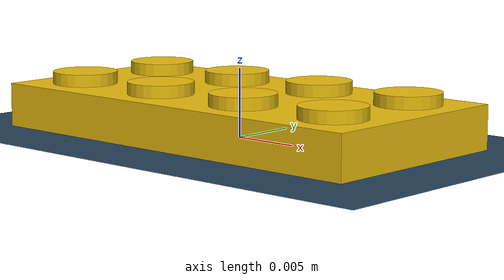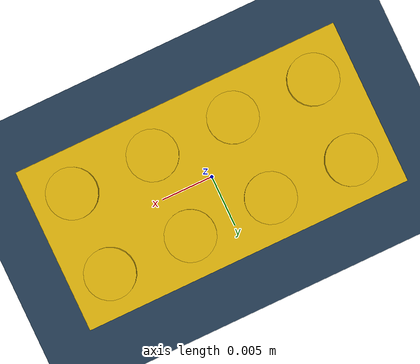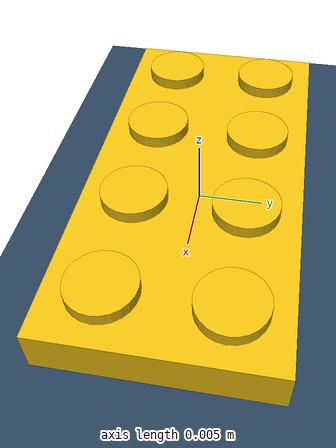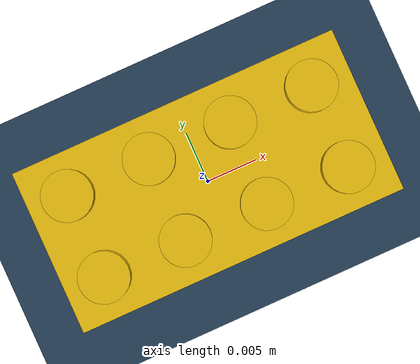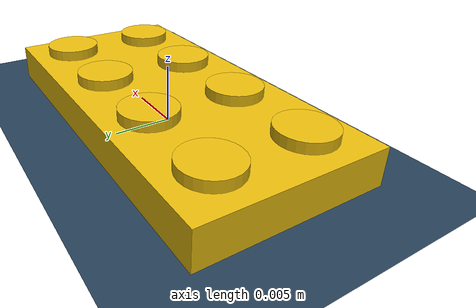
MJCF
<mujoco model="lego_plate_4x2_scene">
  <!--
    Standalone viewer scene for the lego_plate_4x2 asset.
    Quick look:
      python -m mujoco.viewer --mjcf assets/lego/scene_lego_plate_4x2.xml
  -->
  <option timestep="0.002" gravity="0 0 -9.81"/>

  <visual>
    <headlight ambient="0.4 0.4 0.4" diffuse="0.6 0.6 0.6" specular="0.1 0.1 0.1"/>
  </visual>

  <asset>
    <texture type="skybox" builtin="gradient" rgb1="0.3 0.5 0.7" rgb2="0 0 0" width="512" height="512"/>
    <texture type="2d" name="groundplane" builtin="checker" mark="edge" rgb1="0.2 0.3 0.4" rgb2="0.1 0.2 0.3"
              markrgb="0.8 0.8 0.8" width="300" height="300"/>
    <material name="groundplane" texture="groundplane" texuniform="true" texrepeat="5 5" reflectance="0.1"/>
  </asset>

  <worldbody>
    <light pos="0.2 0.2 0.3" dir="-0.5 -0.5 -1" diffuse="0.8 0.8 0.8"/>
    <geom name="floor" type="plane" size="0.5 0.5 0.05" material="groundplane"/>
  </worldbody>

  <include file="lego_plate_4x2.xml"/>

  <keyframe>
    <key name="dropped" qpos="0 0 0.05 1 0 0 0"/>
  </keyframe>
</mujoco>

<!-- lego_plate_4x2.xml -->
<mujoco model="lego_plate_4x2">
  <compiler angle="radian"/>

  <default>
    <default class="lego_plate_4x2">
      <!-- density is tuned down from ABS's real ~1050 kg/m3 so the solid
           primitive body (no hollow underside) lands near a real piece's mass -->
      <geom type="box" material="lego_yellow" density="500" friction="0.9 0.02 0.001"/>
      <default class="lego_plate_4x2/stud">
        <geom type="cylinder"/>
      </default>
    </default>
  </default>

  <asset>
    <material name="lego_yellow" rgba="0.93 0.75 0.05 1"/>
  </asset>

  <worldbody>
    <body name="lego_plate_4x2" childclass="lego_plate_4x2">
      <freejoint name="lego_plate_4x2_freejoint"/>

      <!-- plate body: 4 studs long (x) x 2 studs wide (y) x 3.2mm tall (z) -->
      <!-- mass/inertia are left to MuJoCo, computed from geom volume x density above -->
      <geom name="lego_plate_4x2_body" size="0.0159 0.0079 0.0016" pos="0 0 0.0016"/>

      <geom class="lego_plate_4x2/stud" name="lego_plate_4x2_stud_00" size="0.0024 0.00085" pos="-0.012 -0.004 0.00325"/>
      <geom class="lego_plate_4x2/stud" name="lego_plate_4x2_stud_01" size="0.0024 0.00085" pos="-0.012 0.004 0.00325"/>
      <geom class="lego_plate_4x2/stud" name="lego_plate_4x2_stud_10" size="0.0024 0.00085" pos="-0.004 -0.004 0.00325"/>
      <geom class="lego_plate_4x2/stud" name="lego_plate_4x2_stud_11" size="0.0024 0.00085" pos="-0.004 0.004 0.00325"/>
      <geom class="lego_plate_4x2/stud" name="lego_plate_4x2_stud_20" size="0.0024 0.00085" pos="0.004 -0.004 0.00325"/>
      <geom class="lego_plate_4x2/stud" name="lego_plate_4x2_stud_21" size="0.0024 0.00085" pos="0.004 0.004 0.00325"/>
      <geom class="lego_plate_4x2/stud" name="lego_plate_4x2_stud_30" size="0.0024 0.00085" pos="0.012 -0.004 0.00325"/>
      <geom class="lego_plate_4x2/stud" name="lego_plate_4x2_stud_31" size="0.0024 0.00085" pos="0.012 0.004 0.00325"/>
    </body>
  </worldbody>
</mujoco>
